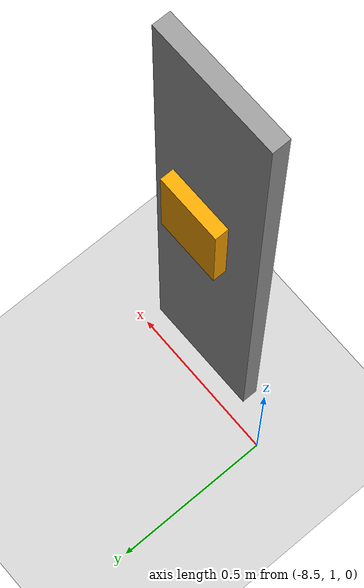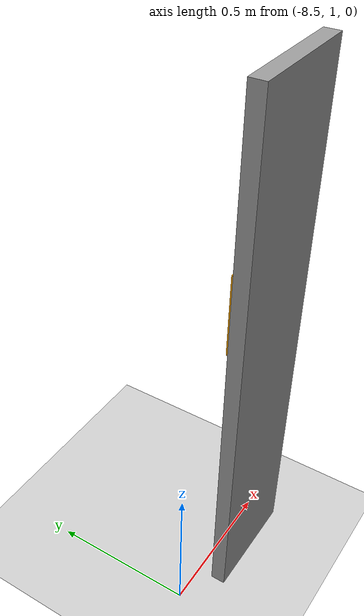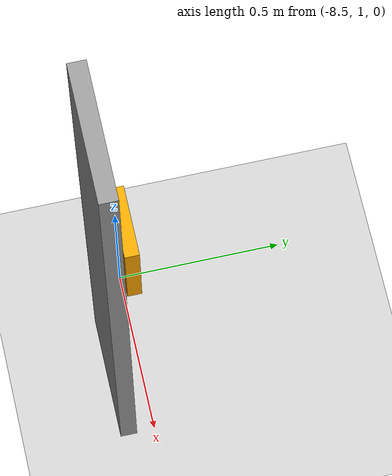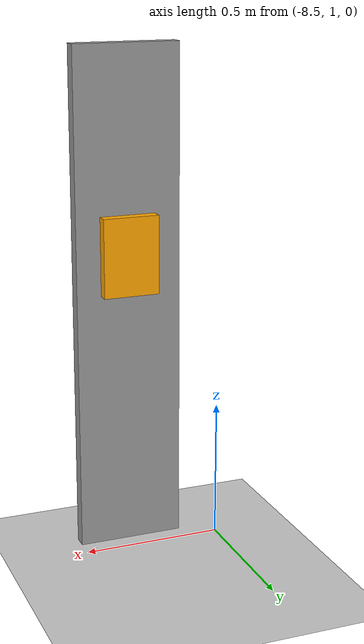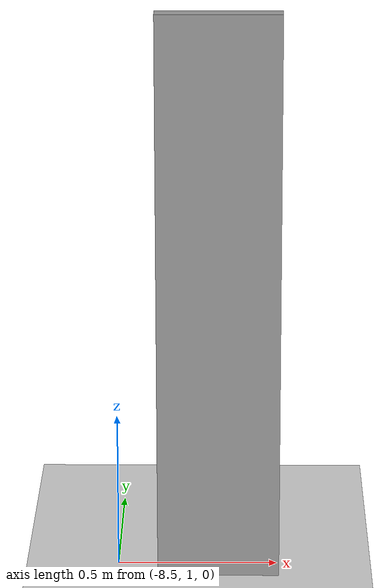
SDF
<sdf version="1.7">
 <world name="default">
  <model name="ground_plane">
   <static>1</static>
   <link name="link">
    <collision name="collision">
     <geometry><plane><normal>0 0 1</normal><size>100 100</size></plane></geometry>
     <surface>
      <contact><collide_bitmask>65535</collide_bitmask></contact>
      <friction><ode><mu>100</mu><mu2>50</mu2></ode></friction>
     </surface>
    </collision>
    <visual name="visual">
     <cast_shadows>0</cast_shadows>
     <geometry><plane><normal>0 0 1</normal><size>100 100</size></plane></geometry>
     <material>
      <script><uri>file://media/materials/scripts/gazebo.material</uri><name>Gazebo/Grey</name></script>
     </material>
    </visual>
   </link>
  </model>
  <model name="my_bookshelf">
   <link name="link_0_clone_clone_1">
    <inertial>
     <mass>1</mass>
     <inertia>
      <ixx>0.166667</ixx>
      <ixy>0</ixy>
      <ixz>0</ixz>
      <iyy>0.166667</iyy>
      <iyz>0</iyz>
      <izz>0.166667</izz>
     </inertia>
    </inertial>
    <pose>0.183198 -0.71768 1.08597 0 -0 0</pose>
    <visual name="visual">
     <geometry><box><size>0.2 0.04 0.28</size></box></geometry>
     <material>
      <lighting>1</lighting>
      <script><uri>file://media/materials/scripts/gazebo.material</uri><name>Gazebo/Grey</name></script>
      <shader type="pixel"><normal_map>__default__</normal_map></shader>
      <ambient>1 0.65 0 1</ambient>
      <diffuse>0.7 0.7 0.7 1</diffuse>
      <specular>0.01 0.01 0.01 1</specular>
      <emissive>0 0 0 1</emissive>
     </material>
    </visual>
    <collision name="collision">
     <geometry><box><size>0.2 0.04 0.28</size></box></geometry>
     <surface>
      <friction>
       <ode><mu>1</mu><mu2>1</mu2><fdir1>0 0 0</fdir1><slip1>0</slip1><slip2>0</slip2></ode>
       <torsional>
        <coefficient>1</coefficient>
        <patch_radius>0</patch_radius>
        <surface_radius>0</surface_radius>
        <use_patch_radius>1</use_patch_radius>
        <ode><slip>0</slip></ode>
       </torsional>
      </friction>
      <bounce><restitution_coefficient>0</restitution_coefficient><threshold>1e+06</threshold></bounce>
      <contact>
       <collide_without_contact>0</collide_without_contact>
       <collide_without_contact_bitmask>1</collide_without_contact_bitmask>
       <collide_bitmask>1</collide_bitmask>
       <ode>
        <soft_cfm>0</soft_cfm>
        <soft_erp>0.2</soft_erp>
        <kp>1e+13</kp>
        <kd>1</kd>
        <max_vel>0.01</max_vel>
        <min_depth>0</min_depth>
       </ode>
       <bullet>
        <split_impulse>1</split_impulse>
        <split_impulse_penetration_threshold>-0.01</split_impulse_penetration_threshold>
        <soft_cfm>0</soft_cfm>
        <soft_erp>0.2</soft_erp>
        <kp>1e+13</kp>
        <kd>1</kd>
       </bullet>
      </contact>
     </surface>
    </collision>
   </link>
   <link name="link_clone_0">
    <inertial>
     <mass>1</mass>
     <inertia>
      <ixx>0.166667</ixx>
      <ixy>0</ixy>
      <ixz>0</ixz>
      <iyy>0.166667</iyy>
      <iyz>0</iyz>
      <izz>0.166667</izz>
     </inertia>
    </inertial>
    <pose>0.1762 -0.777121 0.006003 0 -0 0</pose>
    <visual name="visual">
     <geometry><box><size>0.05 0.38 1.8</size></box></geometry>
     <material>
      <script><name>Gazebo/Grey</name><uri>file://media/materials/scripts/gazebo.material</uri></script>
      <shader type="pixel"><normal_map>__default__</normal_map></shader>
      <ambient>0.9 0.9 0.9 1</ambient>
      <diffuse>0.9 0.9 0.9 1</diffuse>
      <specular>0.01 0.01 0.01 1</specular>
      <emissive>0 0 0 1</emissive>
     </material>
     <pose>0 0 0.9 0 -0 1.5707</pose>
    </visual>
    <collision name="collision">
     <pose>0 0 0.9 0 -0 1.5707</pose>
     <geometry><box><size>0.05 0.38 1.8</size></box></geometry>
     <surface>
      <friction>
       <ode><mu>1</mu><mu2>1</mu2><fdir1>0 0 0</fdir1><slip1>0</slip1><slip2>0</slip2></ode>
       <torsional>
        <coefficient>1</coefficient>
        <patch_radius>0</patch_radius>
        <surface_radius>0</surface_radius>
        <use_patch_radius>1</use_patch_radius>
        <ode><slip>0</slip></ode>
       </torsional>
      </friction>
      <bounce><restitution_coefficient>0</restitution_coefficient><threshold>1e+06</threshold></bounce>
      <contact>
       <collide_without_contact>0</collide_without_contact>
       <collide_without_contact_bitmask>1</collide_without_contact_bitmask>
       <collide_bitmask>1</collide_bitmask>
       <ode>
        <soft_cfm>0</soft_cfm>
        <soft_erp>0.2</soft_erp>
        <kp>1e+13</kp>
        <kd>1</kd>
        <max_vel>0.01</max_vel>
        <min_depth>0</min_depth>
       </ode>
       <bullet>
        <split_impulse>1</split_impulse>
        <split_impulse_penetration_threshold>-0.01</split_impulse_penetration_threshold>
        <soft_cfm>0</soft_cfm>
        <soft_erp>0.2</soft_erp>
        <kp>1e+13</kp>
        <kd>1</kd>
       </bullet>
      </contact>
     </surface>
    </collision>
   </link>
   <static>1</static>
   <pose>-8.36027 1.69745 0 0 -0 0</pose>
  </model>
 </world>
</sdf>
